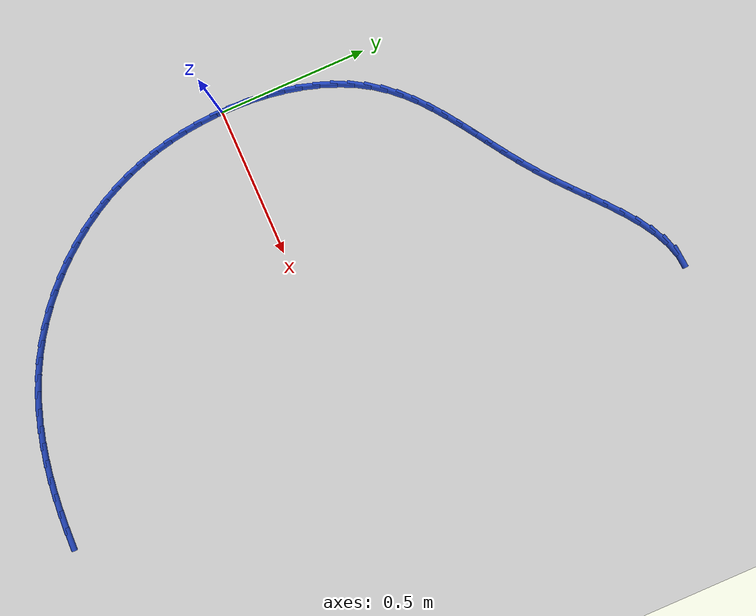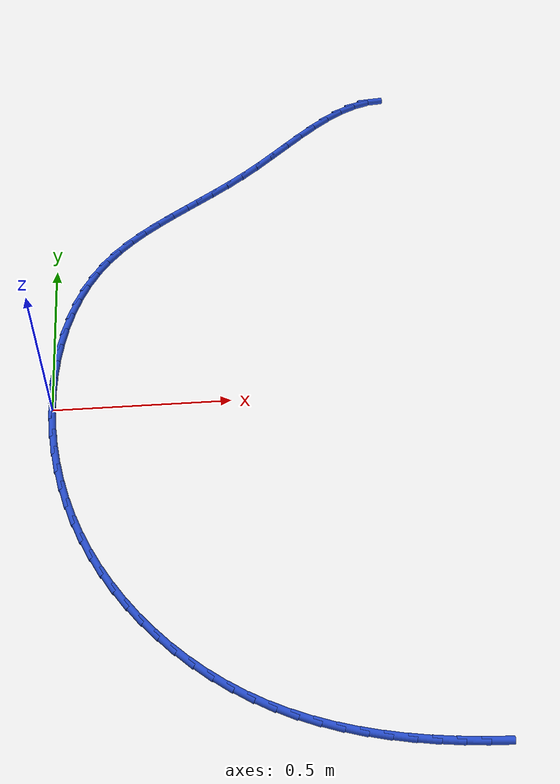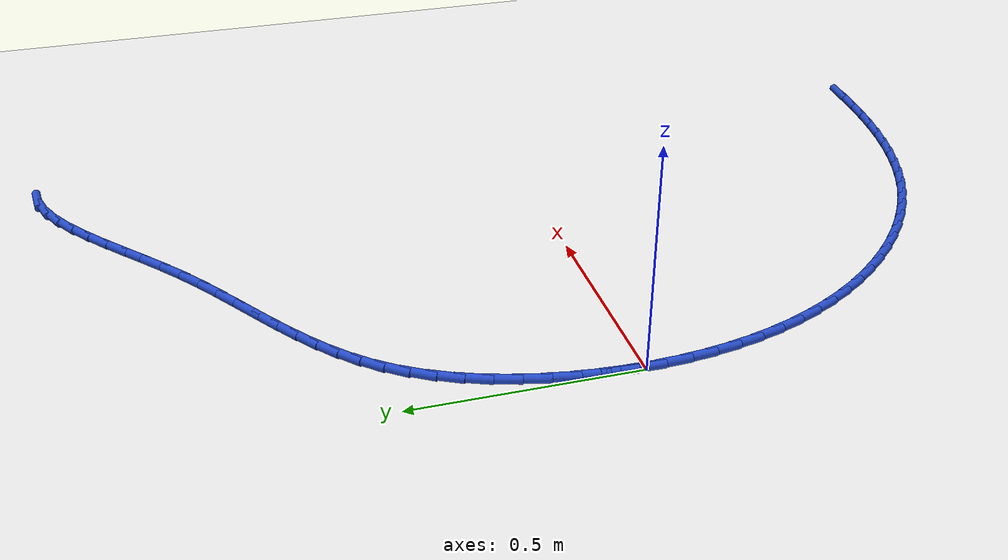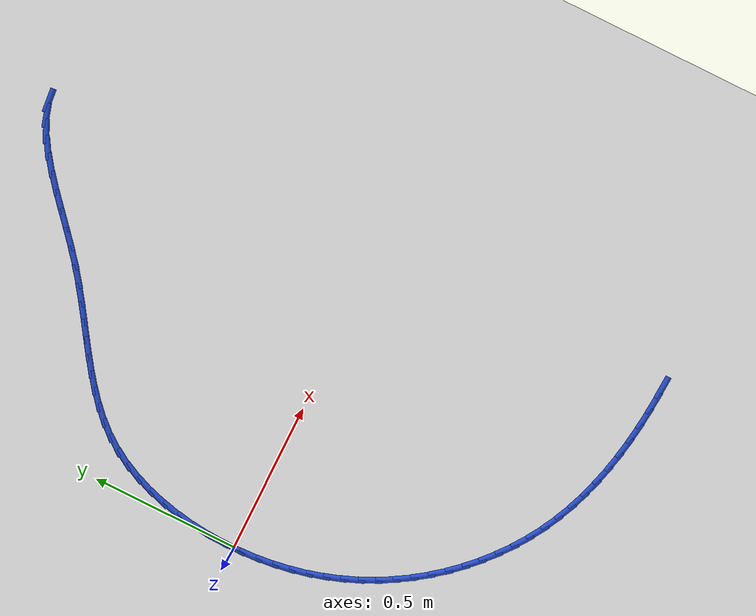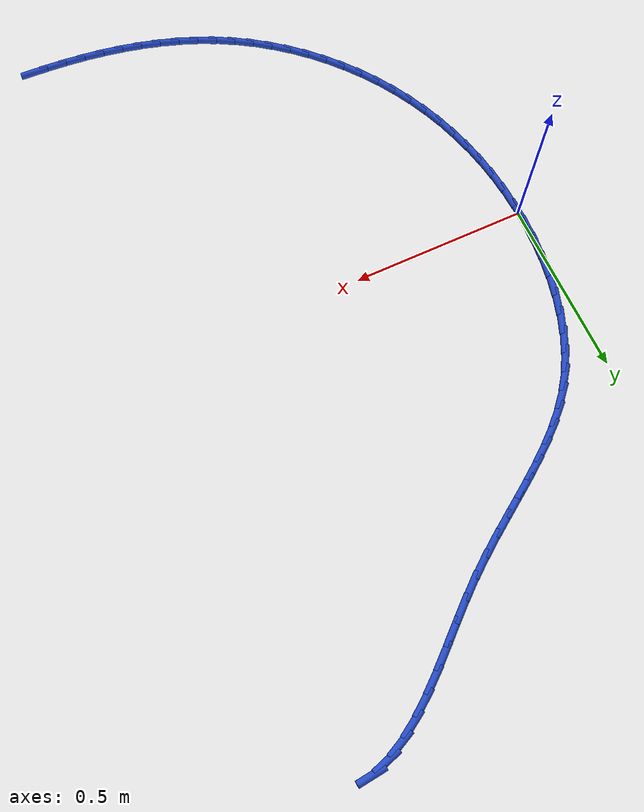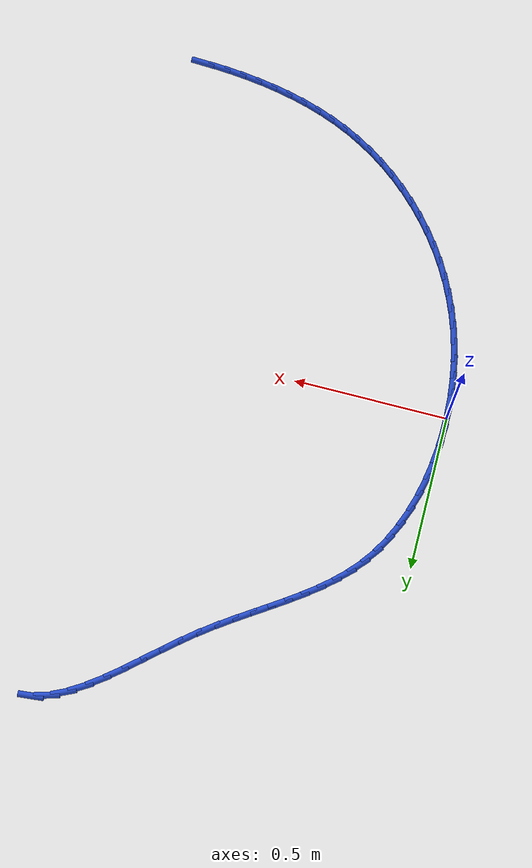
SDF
<sdf version="1.6">
 <world name="default">
  <model name="ground_plane">
   <static>1</static>
   <link name="link">
    <collision name="collision">
     <geometry><plane><normal>0 0 1</normal><size>100 100</size></plane></geometry>
     <surface><friction><ode><mu>100</mu><mu2>50</mu2></ode></friction></surface>
    </collision>
    <visual name="visual">
     <cast_shadows>0</cast_shadows>
     <geometry><plane><normal>0 0 1</normal><size>100 100</size></plane></geometry>
     <material>
      <script><uri>file://media/materials/scripts/gazebo.material</uri><name>Gazebo/WhiteGlow</name></script>
     </material>
    </visual>
   </link>
  </model>
  <model name="line">
   <link name="link_0">
    <pose>-1.0408340855860843e-17 4.163336342344337e-17 0.01 0 1.57 1.5574177690300401</pose>
    <collision name="collision">
     <geometry><cylinder><radius>0.01</radius><length>0.08</length></cylinder></geometry>
    </collision>
    <visual name="visual">
     <material>
      <script><name>Gazebo/Blue</name><uri>file://media/materials/scripts/gazebo.material</uri></script>
     </material>
     <geometry><cylinder><radius>0.01</radius><length>0.08</length></cylinder></geometry>
    </visual>
   </link>
   <link name="link_1">
    <pose>0.0007826681723845128 0.058498194654792224 0.01 0 1.57 1.504505413084772</pose>
    <collision name="collision">
     <geometry><cylinder><radius>0.01</radius><length>0.08</length></cylinder></geometry>
    </collision>
    <visual name="visual">
     <material>
      <script><name>Gazebo/Blue</name><uri>file://media/materials/scripts/gazebo.material</uri></script>
     </material>
     <geometry><cylinder><radius>0.01</radius><length>0.08</length></cylinder></geometry>
    </visual>
   </link>
   <link name="link_2">
    <pose>0.004674306133302193 0.11711762665230002 0.01 0 1.57 1.4495139606433975</pose>
    <collision name="collision">
     <geometry><cylinder><radius>0.01</radius><length>0.08</length></cylinder></geometry>
    </collision>
    <visual name="visual">
     <material>
      <script><name>Gazebo/Blue</name><uri>file://media/materials/scripts/gazebo.material</uri></script>
     </material>
     <geometry><cylinder><radius>0.01</radius><length>0.08</length></cylinder></geometry>
    </visual>
   </link>
   <link name="link_3">
    <pose>0.011775307558945793 0.17537960053421775 0.01 0 1.57 1.391453621676446</pose>
    <collision name="collision">
     <geometry><cylinder><radius>0.01</radius><length>0.08</length></cylinder></geometry>
    </collision>
    <visual name="visual">
     <material>
      <script><name>Gazebo/Blue</name><uri>file://media/materials/scripts/gazebo.material</uri></script>
     </material>
     <geometry><cylinder><radius>0.01</radius><length>0.08</length></cylinder></geometry>
    </visual>
   </link>
   <link name="link_4">
    <pose>0.022186066125508053 0.23280542084223957 0.01 0 1.57 1.3292899786521155</pose>
    <collision name="collision">
     <geometry><cylinder><radius>0.01</radius><length>0.08</length></cylinder></geometry>
    </collision>
    <visual name="visual">
     <material>
      <script><name>Gazebo/Blue</name><uri>file://media/materials/scripts/gazebo.material</uri></script>
     </material>
     <geometry><cylinder><radius>0.01</radius><length>0.08</length></cylinder></geometry>
    </visual>
   </link>
   <link name="link_5">
    <pose>0.036006975509181735 0.2889163921180599 0.01 0 1.57 1.2619306652259732</pose>
    <collision name="collision">
     <geometry><cylinder><radius>0.01</radius><length>0.08</length></cylinder></geometry>
    </collision>
    <visual name="visual">
     <material>
      <script><name>Gazebo/Blue</name><uri>file://media/materials/scripts/gazebo.material</uri></script>
     </material>
     <geometry><cylinder><radius>0.01</radius><length>0.08</length></cylinder></geometry>
    </visual>
   </link>
   <link name="link_6">
    <pose>0.05333842938615961 0.34323381890337284 0.01 0 1.57 1.1882324732519702</pose>
    <collision name="collision">
     <geometry><cylinder><radius>0.01</radius><length>0.08</length></cylinder></geometry>
    </collision>
    <visual name="visual">
     <material>
      <script><name>Gazebo/Blue</name><uri>file://media/materials/scripts/gazebo.material</uri></script>
     </material>
     <geometry><cylinder><radius>0.01</radius><length>0.08</length></cylinder></geometry>
    </visual>
   </link>
   <link name="link_7">
    <pose>0.07428082143263441 0.39527900573987285 0.01 0 1.57 1.1070416412242712</pose>
    <collision name="collision">
     <geometry><cylinder><radius>0.01</radius><length>0.08</length></cylinder></geometry>
    </collision>
    <visual name="visual">
     <material>
      <script><name>Gazebo/Blue</name><uri>file://media/materials/scripts/gazebo.material</uri></script>
     </material>
     <geometry><cylinder><radius>0.01</radius><length>0.08</length></cylinder></geometry>
    </visual>
   </link>
   <link name="link_8">
    <pose>0.09893454532479887 0.44457325716925394 0.01 0 1.57 1.0172856177451755</pose>
    <collision name="collision">
     <geometry><cylinder><radius>0.01</radius><length>0.08</length></cylinder></geometry>
    </collision>
    <visual name="visual">
     <material>
      <script><name>Gazebo/Blue</name><uri>file://media/materials/scripts/gazebo.material</uri></script>
     </material>
     <geometry><cylinder><radius>0.01</radius><length>0.08</length></cylinder></geometry>
    </visual>
   </link>
   <link name="link_9">
    <pose>0.1273999947388458 0.49063787773321066 0.01 0 1.57 0.9198083329990376</pose>
    <collision name="collision">
     <geometry><cylinder><radius>0.01</radius><length>0.08</length></cylinder></geometry>
    </collision>
    <visual name="visual">
     <material>
      <script><name>Gazebo/Blue</name><uri>file://media/materials/scripts/gazebo.material</uri></script>
     </material>
     <geometry><cylinder><radius>0.01</radius><length>0.08</length></cylinder></geometry>
    </visual>
   </link>
   <link name="link_10">
    <pose>0.15973396585748373 0.5330840268116098 0.01 0 1.57 0.8281286645688386</pose>
    <collision name="collision">
     <geometry><cylinder><radius>0.01</radius><length>0.08</length></cylinder></geometry>
    </collision>
    <visual name="visual">
     <material>
      <script><name>Gazebo/Blue</name><uri>file://media/materials/scripts/gazebo.material</uri></script>
     </material>
     <geometry><cylinder><radius>0.01</radius><length>0.08</length></cylinder></geometry>
    </visual>
   </link>
   <link name="link_11">
    <pose>0.1956569139586014 0.57221606550667 0.01 0 1.57 0.7505719383669203</pose>
    <collision name="collision">
     <geometry><cylinder><radius>0.01</radius><length>0.08</length></cylinder></geometry>
    </collision>
    <visual name="visual">
     <material>
      <script><name>Gazebo/Blue</name><uri>file://media/materials/scripts/gazebo.material</uri></script>
     </material>
     <geometry><cylinder><radius>0.01</radius><length>0.08</length></cylinder></geometry>
    </visual>
   </link>
   <link name="link_12">
    <pose>0.2347328338134128 0.6086608214750864 0.01 0 1.57 0.688484172741442</pose>
    <collision name="collision">
     <geometry><cylinder><radius>0.01</radius><length>0.08</length></cylinder></geometry>
    </collision>
    <visual name="visual">
     <material>
      <script><name>Gazebo/Blue</name><uri>file://media/materials/scripts/gazebo.material</uri></script>
     </material>
     <geometry><cylinder><radius>0.01</radius><length>0.08</length></cylinder></geometry>
    </visual>
   </link>
   <link name="link_13">
    <pose>0.2765248511669122 0.643046913444648 0.01 0 1.57 0.6420854070119544</pose>
    <collision name="collision">
     <geometry><cylinder><radius>0.01</radius><length>0.08</length></cylinder></geometry>
    </collision>
    <visual name="visual">
     <material>
      <script><name>Gazebo/Blue</name><uri>file://media/materials/scripts/gazebo.material</uri></script>
     </material>
     <geometry><cylinder><radius>0.01</radius><length>0.08</length></cylinder></geometry>
    </visual>
   </link>
   <link name="link_14">
    <pose>0.3205960917640941 0.6760029601431439 0.01 0 1.57 0.6109467630183006</pose>
    <collision name="collision">
     <geometry><cylinder><radius>0.01</radius><length>0.08</length></cylinder></geometry>
    </collision>
    <visual name="visual">
     <material>
      <script><name>Gazebo/Blue</name><uri>file://media/materials/scripts/gazebo.material</uri></script>
     </material>
     <geometry><cylinder><radius>0.01</radius><length>0.08</length></cylinder></geometry>
    </visual>
   </link>
   <link name="link_15">
    <pose>0.36650968134995293 0.7081575802983623 0.01 0 1.57 0.5943511157183965</pose>
    <collision name="collision">
     <geometry><cylinder><radius>0.01</radius><length>0.08</length></cylinder></geometry>
    </collision>
    <visual name="visual">
     <material>
      <script><name>Gazebo/Blue</name><uri>file://media/materials/scripts/gazebo.material</uri></script>
     </material>
     <geometry><cylinder><radius>0.01</radius><length>0.08</length></cylinder></geometry>
    </visual>
   </link>
   <link name="link_16">
    <pose>0.413828745669483 0.7401393926380925 0.01 0 1.57 0.5915190682442978</pose>
    <collision name="collision">
     <geometry><cylinder><radius>0.01</radius><length>0.08</length></cylinder></geometry>
    </collision>
    <visual name="visual">
     <material>
      <script><name>Gazebo/Blue</name><uri>file://media/materials/scripts/gazebo.material</uri></script>
     </material>
     <geometry><cylinder><radius>0.01</radius><length>0.08</length></cylinder></geometry>
    </visual>
   </link>
   <link name="link_17">
    <pose>0.46211641046767904 0.7725770158901233 0.01 0 1.57 0.6017129640297524</pose>
    <collision name="collision">
     <geometry><cylinder><radius>0.01</radius><length>0.08</length></cylinder></geometry>
    </collision>
    <visual name="visual">
     <material>
      <script><name>Gazebo/Blue</name><uri>file://media/materials/scripts/gazebo.material</uri></script>
     </material>
     <geometry><cylinder><radius>0.01</radius><length>0.08</length></cylinder></geometry>
    </visual>
   </link>
   <link name="link_18">
    <pose>0.5109358014895351 0.8060990687822431 0.01 0 1.57 0.6242498368915723</pose>
    <collision name="collision">
     <geometry><cylinder><radius>0.01</radius><length>0.08</length></cylinder></geometry>
    </collision>
    <visual name="visual">
     <material>
      <script><name>Gazebo/Blue</name><uri>file://media/materials/scripts/gazebo.material</uri></script>
     </material>
     <geometry><cylinder><radius>0.01</radius><length>0.08</length></cylinder></geometry>
    </visual>
   </link>
   <link name="link_19">
    <pose>0.5598500444800458 0.8413341700422412 0.01 0 1.57 0.658410438223325</pose>
    <collision name="collision">
     <geometry><cylinder><radius>0.01</radius><length>0.08</length></cylinder></geometry>
    </collision>
    <visual name="visual">
     <material>
      <script><name>Gazebo/Blue</name><uri>file://media/materials/scripts/gazebo.material</uri></script>
     </material>
     <geometry><cylinder><radius>0.01</radius><length>0.08</length></cylinder></geometry>
    </visual>
   </link>
   <link name="link_20">
    <pose>0.6084230076996732 0.8789083216188484 0.01 0 1.57 0.6951481516244509</pose>
    <collision name="collision">
     <geometry><cylinder><radius>0.01</radius><length>0.08</length></cylinder></geometry>
    </collision>
    <visual name="visual">
     <material>
      <script><name>Gazebo/Blue</name><uri>file://media/materials/scripts/gazebo.material</uri></script>
     </material>
     <geometry><cylinder><radius>0.01</radius><length>0.08</length></cylinder></geometry>
    </visual>
   </link>
   <link name="link_21">
    <pose>0.6563737532753126 0.9189005899728488 0.01 0 1.57 0.7164866733013899</pose>
    <collision name="collision">
     <geometry><cylinder><radius>0.01</radius><length>0.08</length></cylinder></geometry>
    </collision>
    <visual name="visual">
     <material>
      <script><name>Gazebo/Blue</name><uri>file://media/materials/scripts/gazebo.material</uri></script>
     </material>
     <geometry><cylinder><radius>0.01</radius><length>0.08</length></cylinder></geometry>
    </visual>
   </link>
   <link name="link_22">
    <pose>0.7037665177096447 0.9601735752188624 0.01 0 1.57 0.7209365930134982</pose>
    <collision name="collision">
     <geometry><cylinder><radius>0.01</radius><length>0.08</length></cylinder></geometry>
    </collision>
    <visual name="visual">
     <material>
      <script><name>Gazebo/Blue</name><uri>file://media/materials/scripts/gazebo.material</uri></script>
     </material>
     <geometry><cylinder><radius>0.01</radius><length>0.08</length></cylinder></geometry>
    </visual>
   </link>
   <link name="link_23">
    <pose>0.7507120743769748 1.0014258718495472 0.01 0 1.57 0.7083729941616947</pose>
    <collision name="collision">
     <geometry><cylinder><radius>0.01</radius><length>0.08</length></cylinder></geometry>
    </collision>
    <visual name="visual">
     <material>
      <script><name>Gazebo/Blue</name><uri>file://media/materials/scripts/gazebo.material</uri></script>
     </material>
     <geometry><cylinder><radius>0.01</radius><length>0.08</length></cylinder></geometry>
    </visual>
   </link>
   <link name="link_24">
    <pose>0.7973211966516078 1.0413560743575616 0.01 0 1.57 0.6773637482071639</pose>
    <collision name="collision">
     <geometry><cylinder><radius>0.01</radius><length>0.08</length></cylinder></geometry>
    </collision>
    <visual name="visual">
     <material>
      <script><name>Gazebo/Blue</name><uri>file://media/materials/scripts/gazebo.material</uri></script>
     </material>
     <geometry><cylinder><radius>0.01</radius><length>0.08</length></cylinder></geometry>
    </visual>
   </link>
   <link name="link_25">
    <pose>0.8437046579078483 1.0786627772355633 0.01 0 1.57 0.6249963295483388</pose>
    <collision name="collision">
     <geometry><cylinder><radius>0.01</radius><length>0.08</length></cylinder></geometry>
    </collision>
    <visual name="visual">
     <material>
      <script><name>Gazebo/Blue</name><uri>file://media/materials/scripts/gazebo.material</uri></script>
     </material>
     <geometry><cylinder><radius>0.01</radius><length>0.08</length></cylinder></geometry>
    </visual>
   </link>
   <link name="link_26">
    <pose>0.8899732315200015 1.1120445749762102 0.01 0 1.57 0.5467022804409545</pose>
    <collision name="collision">
     <geometry><cylinder><radius>0.01</radius><length>0.08</length></cylinder></geometry>
    </collision>
    <visual name="visual">
     <material>
      <script><name>Gazebo/Blue</name><uri>file://media/materials/scripts/gazebo.material</uri></script>
     </material>
     <geometry><cylinder><radius>0.01</radius><length>0.08</length></cylinder></geometry>
    </visual>
   </link>
   <link name="link_27">
    <pose>0.9362376908623722 1.1402000620721602 0.01 0 1.57 0.43641314177761775</pose>
    <collision name="collision">
     <geometry><cylinder><radius>0.01</radius><length>0.08</length></cylinder></geometry>
    </collision>
    <visual name="visual">
     <material>
      <script><name>Gazebo/Blue</name><uri>file://media/materials/scripts/gazebo.material</uri></script>
     </material>
     <geometry><cylinder><radius>0.01</radius><length>0.08</length></cylinder></geometry>
    </visual>
   </link>
   <link name="link_28">
    <pose>0.9826088093092648 1.1618278330160712 0.01 0 1.57 0.28794956469060884</pose>
    <collision name="collision">
     <geometry><cylinder><radius>0.01</radius><length>0.08</length></cylinder></geometry>
    </collision>
    <visual name="visual">
     <material>
      <script><name>Gazebo/Blue</name><uri>file://media/materials/scripts/gazebo.material</uri></script>
     </material>
     <geometry><cylinder><radius>0.01</radius><length>0.08</length></cylinder></geometry>
    </visual>
   </link>
   <link name="link_29">
    <pose>1.0291973602349846 1.1756264823006015 0.01 0 1.57 0.09934999115300387</pose>
    <collision name="collision">
     <geometry><cylinder><radius>0.01</radius><length>0.08</length></cylinder></geometry>
    </collision>
    <visual name="visual">
     <material>
      <script><name>Gazebo/Blue</name><uri>file://media/materials/scripts/gazebo.material</uri></script>
     </material>
     <geometry><cylinder><radius>0.01</radius><length>0.08</length></cylinder></geometry>
    </visual>
   </link>
   <link name="link_91">
    <pose>1.0759717283490153 -1.0094516488048717 0.01 0 1.57 -0.056421404569793464</pose>
    <collision name="collision">
     <geometry><cylinder><radius>0.01</radius><length>0.08</length></cylinder></geometry>
    </collision>
    <visual name="visual">
     <material>
      <script><name>Gazebo/Blue</name><uri>file://media/materials/scripts/gazebo.material</uri></script>
     </material>
     <geometry><cylinder><radius>0.01</radius><length>0.08</length></cylinder></geometry>
    </visual>
   </link>
   <link name="link_92">
    <pose>1.018440037251272 -1.0062021811626318 0.01 0 1.57 -0.08620005458182617</pose>
    <collision name="collision">
     <geometry><cylinder><radius>0.01</radius><length>0.08</length></cylinder></geometry>
    </collision>
    <visual name="visual">
     <material>
      <script><name>Gazebo/Blue</name><uri>file://media/materials/scripts/gazebo.material</uri></script>
     </material>
     <geometry><cylinder><radius>0.01</radius><length>0.08</length></cylinder></geometry>
    </visual>
   </link>
   <link name="link_93">
    <pose>0.9611780811513299 -1.001253935449454 0.01 0 1.57 -0.11913592642730132</pose>
    <collision name="collision">
     <geometry><cylinder><radius>0.01</radius><length>0.08</length></cylinder></geometry>
    </collision>
    <visual name="visual">
     <material>
      <script><name>Gazebo/Blue</name><uri>file://media/materials/scripts/gazebo.material</uri></script>
     </material>
     <geometry><cylinder><radius>0.01</radius><length>0.08</length></cylinder></geometry>
    </visual>
   </link>
   <link name="link_94">
    <pose>0.9043150222735261 -0.9944472685596714 0.01 0 1.57 -0.15538464715777983</pose>
    <collision name="collision">
     <geometry><cylinder><radius>0.01</radius><length>0.08</length></cylinder></geometry>
    </collision>
    <visual name="visual">
     <material>
      <script><name>Gazebo/Blue</name><uri>file://media/materials/scripts/gazebo.material</uri></script>
     </material>
     <geometry><cylinder><radius>0.01</radius><length>0.08</length></cylinder></geometry>
    </visual>
   </link>
   <link name="link_95">
    <pose>0.8479800228421971 -0.985622537387618 0.01 0 1.57 -0.19509561605738188</pose>
    <collision name="collision">
     <geometry><cylinder><radius>0.01</radius><length>0.08</length></cylinder></geometry>
    </collision>
    <visual name="visual">
     <material>
      <script><name>Gazebo/Blue</name><uri>file://media/materials/scripts/gazebo.material</uri></script>
     </material>
     <geometry><cylinder><radius>0.01</radius><length>0.08</length></cylinder></geometry>
    </visual>
   </link>
   <link name="link_96">
    <pose>0.7923022450816778 -0.9746200988276265 0.01 0 1.57 -0.2383999587274834</pose>
    <collision name="collision">
     <geometry><cylinder><radius>0.01</radius><length>0.08</length></cylinder></geometry>
    </collision>
    <visual name="visual">
     <material>
      <script><name>Gazebo/Blue</name><uri>file://media/materials/scripts/gazebo.material</uri></script>
     </material>
     <geometry><cylinder><radius>0.01</radius><length>0.08</length></cylinder></geometry>
    </visual>
   </link>
   <link name="link_97">
    <pose>0.7374108512163059 -0.9612803097740308 0.01 0 1.57 -0.2853953913189577</pose>
    <collision name="collision">
     <geometry><cylinder><radius>0.01</radius><length>0.08</length></cylinder></geometry>
    </collision>
    <visual name="visual">
     <material>
      <script><name>Gazebo/Blue</name><uri>file://media/materials/scripts/gazebo.material</uri></script>
     </material>
     <geometry><cylinder><radius>0.01</radius><length>0.08</length></cylinder></geometry>
    </visual>
   </link>
   <link name="link_98">
    <pose>0.6834350034704175 -0.945443527121165 0.01 0 1.57 -0.33612806295188435</pose>
    <collision name="collision">
     <geometry><cylinder><radius>0.01</radius><length>0.08</length></cylinder></geometry>
    </collision>
    <visual name="visual">
     <material>
      <script><name>Gazebo/Blue</name><uri>file://media/materials/scripts/gazebo.material</uri></script>
     </material>
     <geometry><cylinder><radius>0.01</radius><length>0.08</length></cylinder></geometry>
    </visual>
   </link>
   <link name="link_99">
    <pose>0.6305038640683482 -0.9269501077633615 0.01 0 1.57 -0.3905720635965769</pose>
    <collision name="collision">
     <geometry><cylinder><radius>0.01</radius><length>0.08</length></cylinder></geometry>
    </collision>
    <visual name="visual">
     <material>
      <script><name>Gazebo/Blue</name><uri>file://media/materials/scripts/gazebo.material</uri></script>
     </material>
     <geometry><cylinder><radius>0.01</radius><length>0.08</length></cylinder></geometry>
    </visual>
   </link>
   <link name="link_100">
    <pose>0.5787465952344344 -0.9056404085949549 0.01 0 1.57 -0.4486081623375879</pose>
    <collision name="collision">
     <geometry><cylinder><radius>0.01</radius><length>0.08</length></cylinder></geometry>
    </collision>
    <visual name="visual">
     <material>
      <script><name>Gazebo/Blue</name><uri>file://media/materials/scripts/gazebo.material</uri></script>
     </material>
     <geometry><cylinder><radius>0.01</radius><length>0.08</length></cylinder></geometry>
    </visual>
   </link>
   <link name="link_101">
    <pose>0.5282923591930132 -0.8813547865102781 0.01 0 1.57 -0.5099360108849395</pose>
    <collision name="collision">
     <geometry><cylinder><radius>0.01</radius><length>0.08</length></cylinder></geometry>
    </collision>
    <visual name="visual">
     <material>
      <script><name>Gazebo/Blue</name><uri>file://media/materials/scripts/gazebo.material</uri></script>
     </material>
     <geometry><cylinder><radius>0.01</radius><length>0.08</length></cylinder></geometry>
    </visual>
   </link>
   <link name="link_102">
    <pose>0.47927070522934156 -0.8539382152803777 0.01 0 1.57 -0.5720377328193303</pose>
    <collision name="collision">
     <geometry><cylinder><radius>0.01</radius><length>0.08</length></cylinder></geometry>
    </collision>
    <visual name="visual">
     <material>
      <script><name>Gazebo/Blue</name><uri>file://media/materials/scripts/gazebo.material</uri></script>
     </material>
     <geometry><cylinder><radius>0.01</radius><length>0.08</length></cylinder></geometry>
    </visual>
   </link>
   <link name="link_103">
    <pose>0.4318241090646246 -0.823389855673312 0.01 0 1.57 -0.6323368257272637</pose>
    <collision name="collision">
     <geometry><cylinder><radius>0.01</radius><length>0.08</length></cylinder></geometry>
    </collision>
    <visual name="visual">
     <material>
      <script><name>Gazebo/Blue</name><uri>file://media/materials/scripts/gazebo.material</uri></script>
     </material>
     <geometry><cylinder><radius>0.01</radius><length>0.08</length></cylinder></geometry>
    </visual>
   </link>
   <link name="link_104">
    <pose>0.3861107052160421 -0.7898956471437152 0.01 0 1.57 -0.6910272212693915</pose>
    <collision name="collision">
     <geometry><cylinder><radius>0.01</radius><length>0.08</length></cylinder></geometry>
    </collision>
    <visual name="visual">
     <material>
      <script><name>Gazebo/Blue</name><uri>file://media/materials/scripts/gazebo.material</uri></script>
     </material>
     <geometry><cylinder><radius>0.01</radius><length>0.08</length></cylinder></geometry>
    </visual>
   </link>
   <link name="link_105">
    <pose>0.34228956804057925 -0.753652739589496 0.01 0 1.57 -0.7484836788760686</pose>
    <collision name="collision">
     <geometry><cylinder><radius>0.01</radius><length>0.08</length></cylinder></geometry>
    </collision>
    <visual name="visual">
     <material>
      <script><name>Gazebo/Blue</name><uri>file://media/materials/scripts/gazebo.material</uri></script>
     </material>
     <geometry><cylinder><radius>0.01</radius><length>0.08</length></cylinder></geometry>
    </visual>
   </link>
   <link name="link_106">
    <pose>0.30051977189521933 -0.7148582829085616 0.01 0 1.57 -0.8050897062742541</pose>
    <collision name="collision">
     <geometry><cylinder><radius>0.01</radius><length>0.08</length></cylinder></geometry>
    </collision>
    <visual name="visual">
     <material>
      <script><name>Gazebo/Blue</name><uri>file://media/materials/scripts/gazebo.material</uri></script>
     </material>
     <geometry><cylinder><radius>0.01</radius><length>0.08</length></cylinder></geometry>
    </visual>
   </link>
   <link name="link_107">
    <pose>0.26096039113694586 -0.6737094269988191 0.01 0 1.57 -0.8612340442503162</pose>
    <collision name="collision">
     <geometry><cylinder><radius>0.01</radius><length>0.08</length></cylinder></geometry>
    </collision>
    <visual name="visual">
     <material>
      <script><name>Gazebo/Blue</name><uri>file://media/materials/scripts/gazebo.material</uri></script>
     </material>
     <geometry><cylinder><radius>0.01</radius><length>0.08</length></cylinder></geometry>
    </visual>
   </link>
   <link name="link_108">
    <pose>0.22377050012274238 -0.6304033217581759 0.01 0 1.57 -0.9173088612596452</pose>
    <collision name="collision">
     <geometry><cylinder><radius>0.01</radius><length>0.08</length></cylinder></geometry>
    </collision>
    <visual name="visual">
     <material>
      <script><name>Gazebo/Blue</name><uri>file://media/materials/scripts/gazebo.material</uri></script>
     </material>
     <geometry><cylinder><radius>0.01</radius><length>0.08</length></cylinder></geometry>
    </visual>
   </link>
   <link name="link_109">
    <pose>0.1891091732095936 -0.5851371170845407 0.01 0 1.57 -0.973708897932457</pose>
    <collision name="collision">
     <geometry><cylinder><radius>0.01</radius><length>0.08</length></cylinder></geometry>
    </collision>
    <visual name="visual">
     <material>
      <script><name>Gazebo/Blue</name><uri>file://media/materials/scripts/gazebo.material</uri></script>
     </material>
     <geometry><cylinder><radius>0.01</radius><length>0.08</length></cylinder></geometry>
    </visual>
   </link>
   <link name="link_110">
    <pose>0.15713548475448277 -0.5381079628758204 0.01 0 1.57 -1.030828636387197</pose>
    <collision name="collision">
     <geometry><cylinder><radius>0.01</radius><length>0.08</length></cylinder></geometry>
    </collision>
    <visual name="visual">
     <material>
      <script><name>Gazebo/Blue</name><uri>file://media/materials/scripts/gazebo.material</uri></script>
     </material>
     <geometry><cylinder><radius>0.01</radius><length>0.08</length></cylinder></geometry>
    </visual>
   </link>
   <link name="link_111">
    <pose>0.12800825825958592 -0.4895128324807303 0.01 0 1.57 -1.0886163543686647</pose>
    <collision name="collision">
     <geometry><cylinder><radius>0.01</radius><length>0.08</length></cylinder></geometry>
    </collision>
    <visual name="visual">
     <material>
      <script><name>Gazebo/Blue</name><uri>file://media/materials/scripts/gazebo.material</uri></script>
     </material>
     <geometry><cylinder><radius>0.01</radius><length>0.08</length></cylinder></geometry>
    </visual>
   </link>
   <link name="link_112">
    <pose>0.10184115303126358 -0.4395169131229371 0.01 0 1.57 -1.1462338174451039</pose>
    <collision name="collision">
     <geometry><cylinder><radius>0.01</radius><length>0.08</length></cylinder></geometry>
    </collision>
    <visual name="visual">
     <material>
      <script><name>Gazebo/Blue</name><uri>file://media/materials/scripts/gazebo.material</uri></script>
     </material>
     <geometry><cylinder><radius>0.01</radius><length>0.08</length></cylinder></geometry>
    </visual>
   </link>
   <link name="link_113">
    <pose>0.07865073955257844 -0.38821706184946353 0.01 0 1.57 -1.2034340997907642</pose>
    <collision name="collision">
     <geometry><cylinder><radius>0.01</radius><length>0.08</length></cylinder></geometry>
    </collision>
    <visual name="visual">
     <material>
      <script><name>Gazebo/Blue</name><uri>file://media/materials/scripts/gazebo.material</uri></script>
     </material>
     <geometry><cylinder><radius>0.01</radius><length>0.08</length></cylinder></geometry>
    </visual>
   </link>
   <link name="link_114">
    <pose>0.058441003368867976 -0.33570127854964094 0.01 0 1.57 -1.2600945884742887</pose>
    <collision name="collision">
     <geometry><cylinder><radius>0.01</radius><length>0.08</length></cylinder></geometry>
    </collision>
    <visual name="visual">
     <material>
      <script><name>Gazebo/Blue</name><uri>file://media/materials/scripts/gazebo.material</uri></script>
     </material>
     <geometry><cylinder><radius>0.01</radius><length>0.08</length></cylinder></geometry>
    </visual>
   </link>
   <link name="link_115">
    <pose>0.041215930025470034 -0.2820575631128015 0.01 0 1.57 -1.3161083826317623</pose>
    <collision name="collision">
     <geometry><cylinder><radius>0.01</radius><length>0.08</length></cylinder></geometry>
    </collision>
    <visual name="visual">
     <material>
      <script><name>Gazebo/Blue</name><uri>file://media/materials/scripts/gazebo.material</uri></script>
     </material>
     <geometry><cylinder><radius>0.01</radius><length>0.08</length></cylinder></geometry>
    </visual>
   </link>
   <link name="link_116">
    <pose>0.02697950506772296 -0.22737391542827895 0.01 0 1.57 -1.3713851118696874</pose>
    <collision name="collision">
     <geometry><cylinder><radius>0.01</radius><length>0.08</length></cylinder></geometry>
    </collision>
    <visual name="visual">
     <material>
      <script><name>Gazebo/Blue</name><uri>file://media/materials/scripts/gazebo.material</uri></script>
     </material>
     <geometry><cylinder><radius>0.01</radius><length>0.08</length></cylinder></geometry>
    </visual>
   </link>
   <link name="link_117">
    <pose>0.01573571404096446 -0.17173833538540517 0.01 0 1.57 -1.42585109001658</pose>
    <collision name="collision">
     <geometry><cylinder><radius>0.01</radius><length>0.08</length></cylinder></geometry>
    </collision>
    <visual name="visual">
     <material>
      <script><name>Gazebo/Blue</name><uri>file://media/materials/scripts/gazebo.material</uri></script>
     </material>
     <geometry><cylinder><radius>0.01</radius><length>0.08</length></cylinder></geometry>
    </visual>
   </link>
   <link name="link_118">
    <pose>0.007488542490532505 -0.11523882287351246 0.01 0 1.57 -1.479448885935557</pose>
    <collision name="collision">
     <geometry><cylinder><radius>0.01</radius><length>0.08</length></cylinder></geometry>
    </collision>
    <visual name="visual">
     <material>
      <script><name>Gazebo/Blue</name><uri>file://media/materials/scripts/gazebo.material</uri></script>
     </material>
     <geometry><cylinder><radius>0.01</radius><length>0.08</length></cylinder></geometry>
    </visual>
   </link>
   <link name="link_119">
    <pose>0.0022419759617649804 -0.05796337778193274 0.01 0 1.57 -1.5321364178604258</pose>
    <collision name="collision">
     <geometry><cylinder><radius>0.01</radius><length>0.08</length></cylinder></geometry>
    </collision>
    <visual name="visual">
     <material>
      <script><name>Gazebo/Blue</name><uri>file://media/materials/scripts/gazebo.material</uri></script>
     </material>
     <geometry><cylinder><radius>0.01</radius><length>0.08</length></cylinder></geometry>
    </visual>
   </link>
   <link name="link_120">
    <pose>-2.6020852139652106e-17 6.938893903907228e-17 0.01 0 1.57 1.5577069648453514</pose>
    <collision name="collision">
     <geometry><cylinder><radius>0.01</radius><length>0.08</length></cylinder></geometry>
    </collision>
    <visual name="visual">
     <material>
      <script><name>Gazebo/Blue</name><uri>file://media/materials/scripts/gazebo.material</uri></script>
     </material>
     <geometry><cylinder><radius>0.01</radius><length>0.08</length></cylinder></geometry>
    </visual>
   </link>
   <link name="link_121">
    <pose>0.000766600150575357 0.05856331058295422 0.01 0 1.57 1.5577069648453516</pose>
    <collision name="collision">
     <geometry><cylinder><radius>0.01</radius><length>0.08</length></cylinder></geometry>
    </collision>
    <visual name="visual">
     <material>
      <script><name>Gazebo/Blue</name><uri>file://media/materials/scripts/gazebo.material</uri></script>
     </material>
     <geometry><cylinder><radius>0.01</radius><length>0.08</length></cylinder></geometry>
    </visual>
   </link>
  </model>
 </world>
</sdf>
